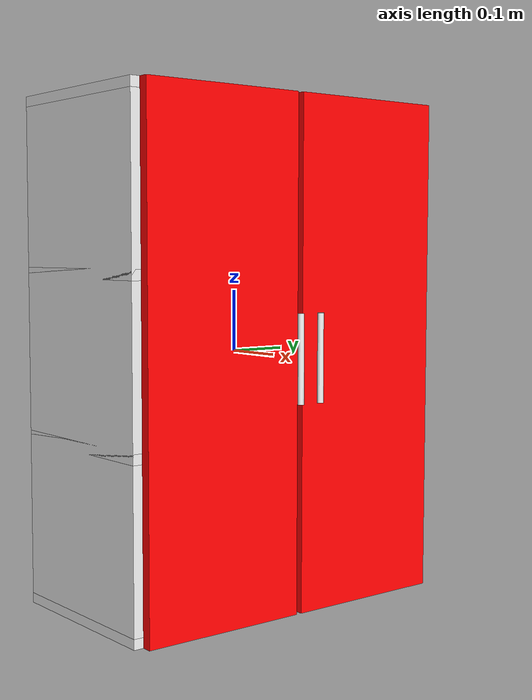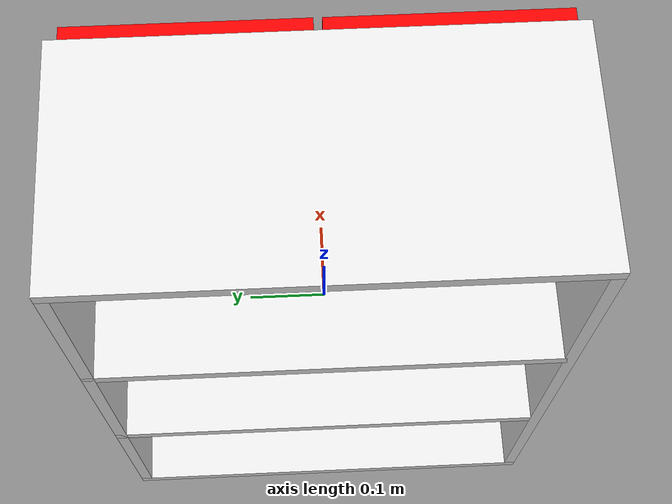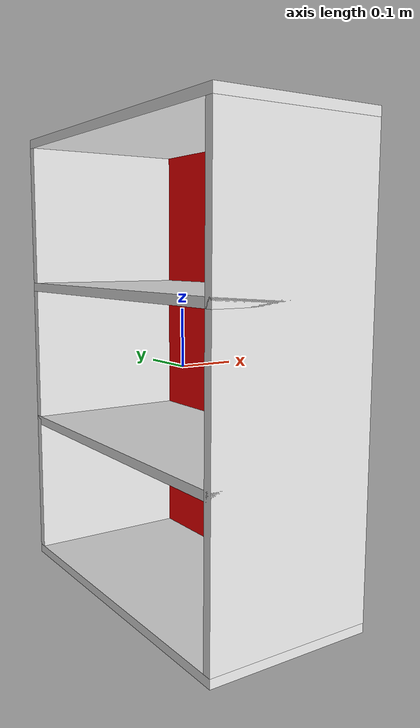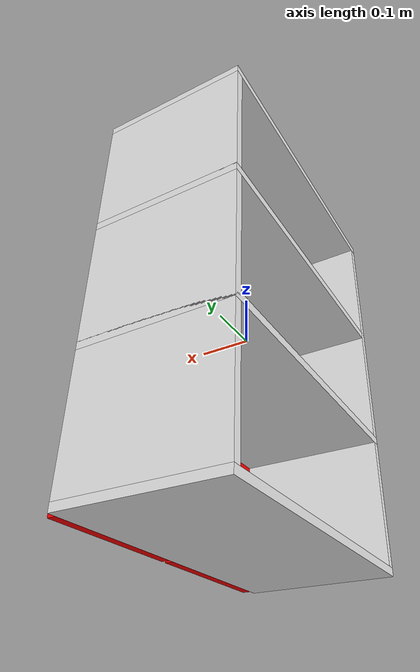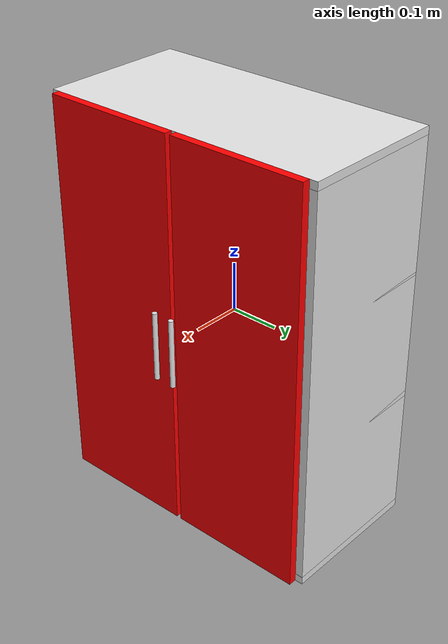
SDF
<?xml version="1.0"?>
<sdf version="1.7">
  <model name="cupboard">
    <link name="cupboard_body">
      <visual name="right_wall">
        <pose> 0 0.292 0 0 0 0</pose>
        <geometry>
          <box>
            <size>0.3 0.016 0.783</size>
          </box>
        </geometry>
        <material>
          <diffuse>0.9 0.9 0.9 1.0</diffuse>
        </material>
      </visual>
      <visual name="left_wall">
        <pose> 0 -0.292 0 0 0 0</pose>
        <geometry>
          <box>
            <size>0.3 0.016 0.783</size>
          </box>
        </geometry>
        <material>
          <diffuse>0.9 0.9 0.9 1.0</diffuse>
        </material>
      </visual>
      <collision name="right_wall">
        <pose> 0 0.292 0 0 0 0</pose>
        <geometry>
          <box>
            <size>0.3 0.016 0.783</size>
          </box>
        </geometry>
        <drake:proximity_properties>
          <drake:compliant_hydroelastic/>
          <drake:hydroelastic_modulus>1.0e8</drake:hydroelastic_modulus>
        </drake:proximity_properties>
      </collision>
      <collision name="left_wall">
        <pose> 0 -0.292 0 0 0 0</pose>
        <geometry>
          <box>
            <size>0.3 0.016 0.783</size>
          </box>
        </geometry>
        <drake:proximity_properties>
          <drake:compliant_hydroelastic/>
          <drake:hydroelastic_modulus>1.0e8</drake:hydroelastic_modulus>
        </drake:proximity_properties>
      </collision>
    </link>
    <link name="top_and_bottom">
      <visual name="bottom">
        <pose> 0 0 -0.3995 0 0 0</pose>
        <geometry>
          <box>
            <size>0.3 0.6 0.016</size>
          </box>
        </geometry>
        <material>
          <diffuse>0.9 0.9 0.9 1.0</diffuse>
        </material>
      </visual>
      <visual name="top">
        <pose> 0 0 0.3995 0 0 0</pose>
        <geometry>
          <box>
            <size>0.3 0.6 0.016</size>
          </box>
        </geometry>
        <material>
          <diffuse>0.9 0.9 0.9 1.0</diffuse>
        </material>
      </visual>
      <visual name="shelf_lower">
        <pose> 0 0 -0.13115 0 0 0</pose>
        <geometry>
          <box>
            <size>0.3 0.6 0.016</size>
          </box>
        </geometry>
        <material>
          <diffuse>0.9 0.9 0.9 1.0</diffuse>
        </material>
      </visual>
      <visual name="shelf_upper">
        <pose> 0 0 0.13115 0 0 0</pose>
        <geometry>
          <box>
            <size>0.3 0.6 0.016</size>
          </box>
        </geometry>
        <material>
          <diffuse>0.9 0.9 0.9 1.0</diffuse>
        </material>
      </visual>
      <collision name="bottom">
        <pose> 0 0 -0.3995 0 0 0</pose>
        <geometry>
          <box>
            <size>0.3 0.6 0.016</size>
          </box>
        </geometry>
        <drake:proximity_properties>
          <drake:compliant_hydroelastic/>
          <drake:hydroelastic_modulus>1.0e8</drake:hydroelastic_modulus>
        </drake:proximity_properties>
      </collision>
      <collision name="top">
        <pose> 0 0 0.3995 0 0 0</pose>
        <geometry>
          <box>
            <size>0.3 0.6 0.016</size>
          </box>
        </geometry>
        <drake:proximity_properties>
          <drake:compliant_hydroelastic/>
          <drake:hydroelastic_modulus>1.0e8</drake:hydroelastic_modulus>
        </drake:proximity_properties>
      </collision>
      <collision name="shelf_lower">
        <pose> 0 0 -0.13115 0 0 0</pose>
        <geometry>
          <box>
            <size>0.3 0.6 0.016</size>
          </box>
        </geometry>
        <drake:proximity_properties>
          <drake:compliant_hydroelastic/>
          <drake:hydroelastic_modulus>1.0e8</drake:hydroelastic_modulus>
        </drake:proximity_properties>
      </collision>
      <collision name="shelf_upper">
        <pose> 0 0 0.13115 0 0 0</pose>
        <geometry>
          <box>
            <size>0.3 0.6 0.016</size>
          </box>
        </geometry>
        <drake:proximity_properties>
          <drake:compliant_hydroelastic/>
          <drake:hydroelastic_modulus>1.0e8</drake:hydroelastic_modulus>
        </drake:proximity_properties>
      </collision>
    </link>
    <!-- joint between bottom_top and world -->
    <joint name="top_and_bottom_cupboard_body" type="fixed">
      <child>top_and_bottom</child>
      <parent>cupboard_body</parent>
    </joint>
    <!-- joint between cupboard_body and left_door -->
    <joint name="left_door_hinge" type="revolute">
      <child>left_door</child>
      <parent>cupboard_body</parent>
      <pose>-0.008 -0.1395 0 0 0 0</pose>
      <axis>
        <xyz> 0 0 1 </xyz>
        <limit>
          <effort>0</effort>
        </limit>
        <dynamics>
          <damping>1.0</damping>
        </dynamics>
      </axis>
    </joint>
    <link name="left_door">
      <pose> 0.158 -0.1445 0 0 0 0</pose>
      <inertial>
        <mass>1</mass>
        <inertia>
          <ixx>0.01042</ixx>
          <ixy>0</ixy>
          <ixz>0</ixz>
          <iyy>0.00542</iyy>
          <iyz>0</iyz>
          <izz>0.00542</izz>
        </inertia>
      </inertial>
      <visual name="cylinder">
        <pose> 0.033 0.1245 0 0 0 0</pose>
        <geometry>
          <cylinder>
            <length>0.14</length>
            <radius>0.005</radius>
          </cylinder>
        </geometry>
        <material>
          <diffuse>0.9 0.9 0.9 1.0</diffuse>
        </material>
      </visual>
      <visual name="slab">
        <geometry>
          <box>
            <size>0.016 0.279 0.815</size>
          </box>
        </geometry>
        <material>
          <diffuse>1 0 0 1.0</diffuse>
        </material>
      </visual>
      <collision name="cylinder">
        <pose> 0.033 0.1245 0 0 0 0</pose>
        <geometry>
          <cylinder>
            <length>0.14</length>
            <radius>0.005</radius>
          </cylinder>
        </geometry>
        <drake:proximity_properties>
          <drake:compliant_hydroelastic/>
          <!-- We set mu_dynamic artificially high to make it easier to open -->
          <drake:mu_dynamic>6.0</drake:mu_dynamic>
          <drake:hydroelastic_modulus>1.0e8</drake:hydroelastic_modulus>
          <drake:mesh_resolution_hint>0.01</drake:mesh_resolution_hint>
        </drake:proximity_properties>
      </collision>
      <collision name="slab">
        <geometry>
          <box>
            <size>0.016 0.279 0.815</size>
          </box>
        </geometry>
        <drake:proximity_properties>
          <drake:compliant_hydroelastic/>
          <drake:hydroelastic_modulus>1.0e8</drake:hydroelastic_modulus>
          <drake:mesh_resolution_hint>0.01</drake:mesh_resolution_hint>
        </drake:proximity_properties>
      </collision>
    </link>
    <!-- joint between cupboard_body and left_door -->
    <joint name="right_door_hinge" type="revolute">
      <child>right_door</child>
      <parent>cupboard_body</parent>
      <pose>-0.008 0.1395 0 0 0 0</pose>
      <axis>
        <xyz> 0 0 1 </xyz>
        <limit>
          <effort>0</effort>
        </limit>
        <dynamics>
          <damping>1.0</damping>
        </dynamics>
      </axis>
    </joint>
    <link name="right_door">
      <pose> 0.158 0.1445 0 0 0 0</pose>
      <inertial>
        <mass>1</mass>
        <inertia>
          <ixx>0.01042</ixx>
          <ixy>0</ixy>
          <ixz>0</ixz>
          <iyy>0.00542</iyy>
          <iyz>0</iyz>
          <izz>0.00542</izz>
        </inertia>
      </inertial>
      <visual name="cylinder">
        <pose> 0.033 -0.1245 0 0 0 0</pose>
        <geometry>
          <cylinder>
            <length>0.14</length>
            <radius>0.005</radius>
          </cylinder>
        </geometry>
        <material>
          <diffuse>0.9 0.9 0.9 1.0</diffuse>
        </material>
      </visual>
      <visual name="slab">
        <geometry>
          <box>
            <size>0.016 0.279 0.815</size>
          </box>
        </geometry>
        <material>
          <diffuse>1 0 0 1.0</diffuse>
        </material>
      </visual>
      <collision name="cylinder">
        <pose> 0.033 -0.1245 0 0 0 0</pose>
        <geometry>
          <cylinder>
            <length>0.14</length>
            <radius>0.005</radius>
          </cylinder>
        </geometry>
        <drake:proximity_properties>
          <drake:compliant_hydroelastic/>
          <drake:mu_dynamic>6.0</drake:mu_dynamic>
          <drake:hydroelastic_modulus>1.0e8</drake:hydroelastic_modulus>
          <drake:mesh_resolution_hint>0.01</drake:mesh_resolution_hint>
        </drake:proximity_properties>
      </collision>
      <collision name="slab">
        <geometry>
          <box>
            <size>0.016 0.279 0.815</size>
          </box>
        </geometry>
        <drake:proximity_properties>
          <drake:compliant_hydroelastic/>
          <drake:hydroelastic_modulus>1.0e8</drake:hydroelastic_modulus>
          <drake:mesh_resolution_hint>0.01</drake:mesh_resolution_hint>
        </drake:proximity_properties>
      </collision>
    </link>
  </model>
</sdf>
